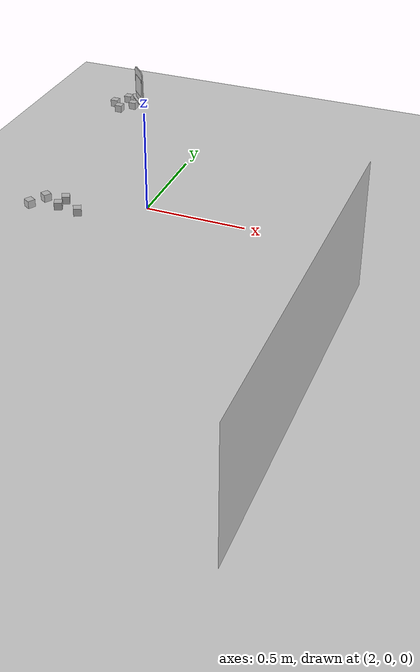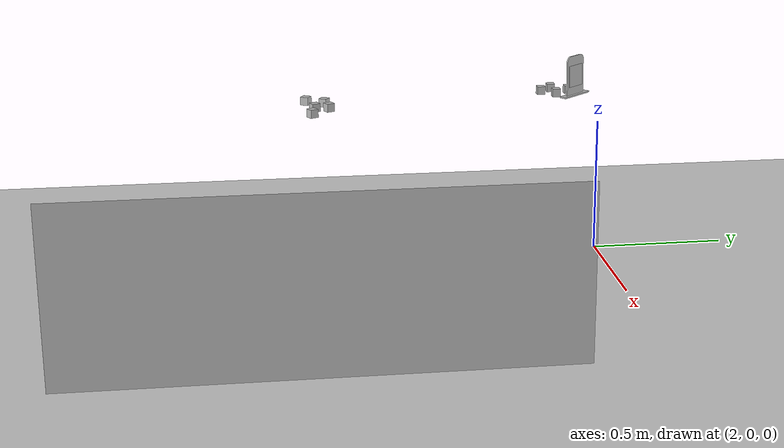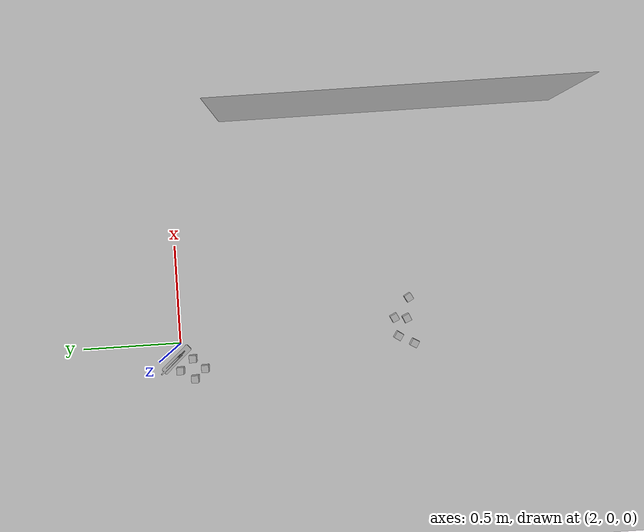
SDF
<sdf version="1.7">
 <world name="default">
  <model name="ground_plane">
   <static>1</static>
   <link name="link">
    <collision name="collision">
     <geometry><plane><normal>0 0 1</normal><size>100 100</size></plane></geometry>
     <surface><friction><ode><mu>100</mu><mu2>50</mu2></ode></friction></surface>
    </collision>
    <visual name="visual">
     <cast_shadows>0</cast_shadows>
     <geometry><plane><normal>0 0 1</normal><size>100 100</size></plane></geometry>
     <material>
      <script><uri>file://media/materials/scripts/gazebo.material</uri><name>Gazebo/Grey</name></script>
     </material>
    </visual>
   </link>
  </model>
  <model name="menagers_commerciale_boite_pizza">
   <static>0</static>
   <link name="link">
    <inertial>
     <mass>0.00893</mass>
     <inertia>
      <ixx>4.47e-06</ixx>
      <iyy>4.47e-06</iyy>
      <izz>4.47e-06</izz>
      <ixy>0</ixy>
      <ixz>0</ixz>
      <iyz>0</iyz>
     </inertia>
    </inertial>
    <visual name="cube_visual">
     <geometry><box><size>0.03 0.03 0.03</size></box></geometry>
     <material>
      <script>
       <uri>model://menagers_commerciale_boite_pizza/materials/scripts/</uri>
       <uri>model://menagers_commerciale_boite_pizza/materials/textures/</uri>
       <name>menagers_commerciale_boite_pizza/FaceMaterial</name>
      </script>
     </material>
    </visual>
    <collision name="collision"><geometry><box><size>0.03 0.03 0.03</size></box></geometry></collision>
   </link>
   <pose>2.22572 -1.09026 0.625 -1e-06 7e-06 0.495794</pose>
  </model>
  <model name="recyclables_industrielle_aluminium_industriel">
   <static>0</static>
   <link name="link">
    <inertial>
     <mass>0.00893</mass>
     <inertia>
      <ixx>4.47e-06</ixx>
      <iyy>4.47e-06</iyy>
      <izz>4.47e-06</izz>
      <ixy>0</ixy>
      <ixz>0</ixz>
      <iyz>0</iyz>
     </inertia>
    </inertial>
    <visual name="cube_visual">
     <geometry><box><size>0.03 0.03 0.03</size></box></geometry>
     <material>
      <script>
       <uri>model://recyclables_industrielle_aluminium_industriel/materials/scripts/</uri>
       <uri>model://recyclables_industrielle_aluminium_industriel/materials/textures/</uri>
       <name>recyclables_industrielle_aluminium_industriel/FaceMaterial</name>
      </script>
     </material>
    </visual>
    <collision name="collision"><geometry><box><size>0.03 0.03 0.03</size></box></geometry></collision>
   </link>
   <pose>2.03343 -1.10231 0.624999 -1.7e-05 -0 -0.540505</pose>
  </model>
  <model name="recyclables_residentielle_bocal_verre_propre">
   <static>0</static>
   <link name="link">
    <inertial>
     <mass>0.00893</mass>
     <inertia>
      <ixx>4.47e-06</ixx>
      <iyy>4.47e-06</iyy>
      <izz>4.47e-06</izz>
      <ixy>0</ixy>
      <ixz>0</ixz>
      <iyz>0</iyz>
     </inertia>
    </inertial>
    <visual name="cube_visual">
     <geometry><box><size>0.03 0.03 0.03</size></box></geometry>
     <material>
      <script>
       <uri>model://recyclables_residentielle_bocal_verre_propre/materials/scripts/</uri>
       <uri>model://recyclables_residentielle_bocal_verre_propre/materials/textures/</uri>
       <name>recyclables_residentielle_bocal_verre_propre/FaceMaterial</name>
      </script>
     </material>
    </visual>
    <collision name="collision"><geometry><box><size>0.03 0.03 0.03</size></box></geometry></collision>
   </link>
   <pose>2.14456 -1.02571 0.624992 7.9e-05 3e-06 0.442661</pose>
  </model>
  <model name="dangereux_commerciale_batterie_ordinateur">
   <static>0</static>
   <link name="link">
    <inertial>
     <mass>0.00893</mass>
     <inertia>
      <ixx>4.47e-06</ixx>
      <iyy>4.47e-06</iyy>
      <izz>4.47e-06</izz>
      <ixy>0</ixy>
      <ixz>0</ixz>
      <iyz>0</iyz>
     </inertia>
    </inertial>
    <visual name="cube_visual">
     <geometry><box><size>0.03 0.03 0.03</size></box></geometry>
     <material>
      <script>
       <uri>model://dangereux_commerciale_batterie_ordinateur/materials/scripts/</uri>
       <uri>model://dangereux_commerciale_batterie_ordinateur/materials/textures/</uri>
       <name>dangereux_commerciale_batterie_ordinateur/FaceMaterial</name>
      </script>
     </material>
    </visual>
    <collision name="collision"><geometry><box><size>0.03 0.03 0.03</size></box></geometry></collision>
   </link>
   <pose>2.13963 -1.07675 0.624997 0.000127 4e-06 0.410696</pose>
  </model>
  <model name="dangereux_industrielle_amiante_plaque">
   <static>0</static>
   <link name="link">
    <inertial>
     <mass>0.00893</mass>
     <inertia>
      <ixx>4.47e-06</ixx>
      <iyy>4.47e-06</iyy>
      <izz>4.47e-06</izz>
      <ixy>0</ixy>
      <ixz>0</ixz>
      <iyz>0</iyz>
     </inertia>
    </inertial>
    <visual name="cube_visual">
     <geometry><box><size>0.03 0.03 0.03</size></box></geometry>
     <material>
      <script>
       <uri>model://dangereux_industrielle_amiante_plaque/materials/scripts/</uri>
       <uri>model://dangereux_industrielle_amiante_plaque/materials/textures/</uri>
       <name>dangereux_industrielle_amiante_plaque/FaceMaterial</name>
      </script>
     </material>
    </visual>
    <collision name="collision"><geometry><box><size>0.03 0.03 0.03</size></box></geometry></collision>
   </link>
   <pose>2.06779 -1.03809 0.624998 3.2e-05 8.5e-05 -0.589509</pose>
  </model>
  <model name="pancarte_qr_code_zone1Tampouy">
   <pose>2.02917 -0.098874 0.649378 0 -0 2.30094</pose>
   <model name="pancarte">
    <static>1</static>
    <link name="pancarte_qr_code_zone1Tampouy_link">
     <collision name="collision">
      <pose>0 0.075 0 0 -0 0</pose>
      <geometry><box><size>0.15 0.15 0.03</size></box></geometry>
     </collision>
     <visual name="visual">
      <geometry>
       <mesh><scale>0.001 0.001 0.001</scale><uri>model://pancarte/meshes/PANCARTE_QR.stl</uri></mesh>
      </geometry>
     </visual>
    </link>
    <pose>8.8e-05 0.001115 -0.037644 1.55978 -0 0</pose>
   </model>
   <model name="qr_code_zone1Tampouy">
    <static>1</static>
    <link name="qr_code_zone1Tampouy_link">
     <pose>0 0 0.001 0 -0 1.5708</pose>
     <visual name="visual_qr_code_zone1Tampouy">
      <cast_shadows>0</cast_shadows>
      <geometry><box><size>0.08 0.08 0.001</size></box></geometry>
      <material>
       <script>
        <uri>model://qr_code_zone1Tampouy/materials/scripts</uri>
        <uri>model://qr_code_zone1Tampouy/materials/textures</uri>
        <name>qr_code_zone1Tampouy/qr_code_zone1Tampouy</name>
       </script>
      </material>
     </visual>
    </link>
    <pose>-8.8e-05 -0.001115 0.037644 1.55615 -0 0</pose>
   </model>
   <model name="qr_code_zone1Tampouy_0">
    <static>1</static>
    <link name="qr_code_zone1Tampouy_link">
     <pose>0 0 0.001 0 -0 1.5708</pose>
     <visual name="visual_qr_code_zone1Tampouy">
      <cast_shadows>0</cast_shadows>
      <geometry><box><size>0.08 0.08 0.001</size></box></geometry>
      <material>
       <script>
        <uri>model://qr_code_zone1Tampouy/materials/scripts</uri>
        <uri>model://qr_code_zone1Tampouy/materials/textures</uri>
        <name>qr_code_zone1Tampouy/qr_code_zone1Tampouy</name>
       </script>
      </material>
     </visual>
    </link>
    <pose>-8.8e-05 0.0072 0.037644 -1.58544 0.001593 3.14159</pose>
   </model>
   <static>0</static>
  </model>
  <model name="menagers_commerciale_bouteille_smoothie">
   <static>0</static>
   <link name="link">
    <inertial>
     <mass>0.00893</mass>
     <inertia>
      <ixx>4.47e-06</ixx>
      <iyy>4.47e-06</iyy>
      <izz>4.47e-06</izz>
      <ixy>0</ixy>
      <ixz>0</ixz>
      <iyz>0</iyz>
     </inertia>
    </inertial>
    <visual name="cube_visual">
     <geometry><box><size>0.03 0.03 0.03</size></box></geometry>
     <material>
      <script>
       <uri>model://menagers_commerciale_bouteille_smoothie/materials/scripts/</uri>
       <uri>model://menagers_commerciale_bouteille_smoothie/materials/textures/</uri>
       <name>menagers_commerciale_bouteille_smoothie/FaceMaterial</name>
      </script>
     </material>
    </visual>
    <collision name="collision"><geometry><box><size>0.03 0.03 0.03</size></box></geometry></collision>
   </link>
   <pose>1.98228 -0.11628 0.624997 -3.5e-05 -2.2e-05 -0.000421</pose>
  </model>
  <model name="menagers_residentielle_boite_conserve_tomate">
   <static>0</static>
   <link name="link">
    <inertial>
     <mass>0.00893</mass>
     <inertia>
      <ixx>4.47e-06</ixx>
      <iyy>4.47e-06</iyy>
      <izz>4.47e-06</izz>
      <ixy>0</ixy>
      <ixz>0</ixz>
      <iyz>0</iyz>
     </inertia>
    </inertial>
    <visual name="cube_visual">
     <geometry><box><size>0.03 0.03 0.03</size></box></geometry>
     <material>
      <script>
       <uri>model://menagers_residentielle_boite_conserve_tomate/materials/scripts/</uri>
       <uri>model://menagers_residentielle_boite_conserve_tomate/materials/textures/</uri>
       <name>menagers_residentielle_boite_conserve_tomate/FaceMaterial</name>
      </script>
     </material>
    </visual>
    <collision name="collision"><geometry><box><size>0.03 0.03 0.03</size></box></geometry></collision>
   </link>
   <pose>1.94428 -0.175542 0.624991 1.8e-05 0 -0.004042</pose>
  </model>
  <model name="dangereux_commerciale_batterie_ups">
   <static>0</static>
   <link name="link">
    <inertial>
     <mass>0.00893</mass>
     <inertia>
      <ixx>4.47e-06</ixx>
      <iyy>4.47e-06</iyy>
      <izz>4.47e-06</izz>
      <ixy>0</ixy>
      <ixz>0</ixz>
      <iyz>0</iyz>
     </inertia>
    </inertial>
    <visual name="cube_visual">
     <geometry><box><size>0.03 0.03 0.03</size></box></geometry>
     <material>
      <script>
       <uri>model://dangereux_commerciale_batterie_ups/materials/scripts/</uri>
       <uri>model://dangereux_commerciale_batterie_ups/materials/textures/</uri>
       <name>dangereux_commerciale_batterie_ups/FaceMaterial</name>
      </script>
     </material>
    </visual>
    <collision name="collision"><geometry><box><size>0.03 0.03 0.03</size></box></geometry></collision>
   </link>
   <pose>2.02923 -0.171082 0.624997 -5.9e-05 1e-05 -0.001047</pose>
  </model>
  <model name="dangereux_residentielle_aerosol_vide">
   <static>0</static>
   <link name="link">
    <inertial>
     <mass>0.00893</mass>
     <inertia>
      <ixx>4.47e-06</ixx>
      <iyy>4.47e-06</iyy>
      <izz>4.47e-06</izz>
      <ixy>0</ixy>
      <ixz>0</ixz>
      <iyz>0</iyz>
     </inertia>
    </inertial>
    <visual name="cube_visual">
     <geometry><box><size>0.03 0.03 0.03</size></box></geometry>
     <material>
      <script>
       <uri>model://dangereux_residentielle_aerosol_vide/materials/scripts/</uri>
       <uri>model://dangereux_residentielle_aerosol_vide/materials/textures/</uri>
       <name>dangereux_residentielle_aerosol_vide/FaceMaterial</name>
      </script>
     </material>
    </visual>
    <collision name="collision"><geometry><box><size>0.03 0.03 0.03</size></box></geometry></collision>
   </link>
   <pose>1.98517 -0.220172 0.624995 -5.8e-05 3e-06 -0.001087</pose>
  </model>
  <model name="logotrc_10">
   <static>1</static>
   <link name="link">
    <visual name="cube_visual">
     <geometry><box><size>1.7021 0 0.60443</size></box></geometry>
     <material>
      <script>
       <uri>model://logotrc/materials/scripts/</uri>
       <uri>model://logotrc/materials/textures/</uri>
       <name>logotrc/FaceMaterial</name>
      </script>
     </material>
    </visual>
   </link>
   <pose>3.12477 -1.11868 0.302811 0 0 -1.57105</pose>
  </model>
 </world>
</sdf>
